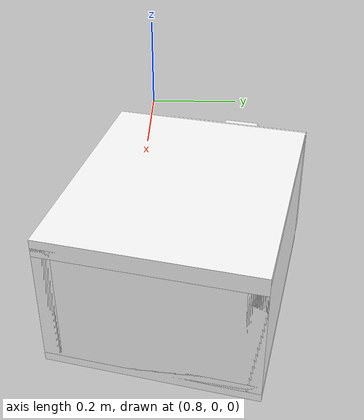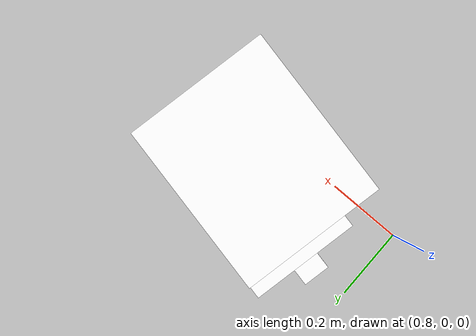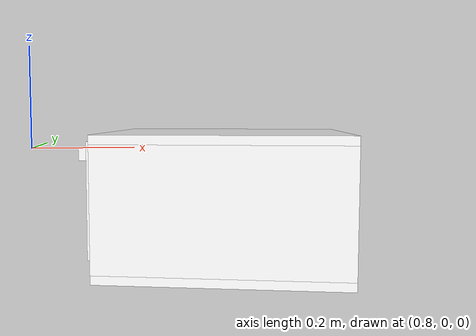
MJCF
<mujoco model="cabinet">
    <compiler angle="radian" eulerseq='zxy' />
    <option gravity = "0 0 0" />
    <option>
        <flag contact = "disable"/>
    </option>
    <statistic	extent="1.0" center="0.0 0.0 0.0"/>
    <visual>
        <map fogstart="3" fogend="5" force="0.1" znear=" 0.100000 " zfar=" 12.000000 "/>
    </visual>
    <size njmax="500" nconmax="100" />
    <actuator>
        <velocity joint="bottom_left_hinge" name="viva_revolution" kv='10'></velocity>
    </actuator>
    <asset>
        <texture builtin="flat" name="tabletex" height="32" width="32" rgb1="1 1 1" type="cube"></texture>
        <texture builtin="flat" name="objtex" height="32" width="32" rgb1="1 1 1" type="cube"></texture>
        <texture builtin="flat" name="handletex" height="32" width="32" rgb1="1 1 1" type="cube"></texture>
        <texture builtin="flat" name="wallpaper" height="32" width="32" rgb1="1 1 1" type="cube"></texture>
        <texture builtin="flat" name="kp" height="32" width="32" rgb1="1 1 1" type="cube"></texture>
        <material name="geomTable" shininess="0.03" specular="0.75" texture="tabletex"></material>
        <material name="geomObj" shininess="0.03" specular="0.75" texture="objtex"></material>
        <material name="geomHandle" shininess="0.03" specular="0.75" texture="handletex"></material>
        <material name="bg" shininess="0.03" specular="0.75" texture="wallpaper"></material>
        <material name="geomKeypad" shininess="0.03" specular="0.75" texture="kp"></material>
    </asset>
    <worldbody>
        <body name="cabinet_bottom" pos= " 1.204610 0.085297 -0.241808 "  quat= " 0.109134 0.000000 0.000000 0.994027" >
            <inertial pos="0 0 0" mass="1" diaginertia="1 1 1" />
            <geom size= " 0.251620 0.210553 0.018118 "  type="box" material="geomObj" name="b"/>
            <body name="cabinet_left" pos= " 0.000000 -0.192436 0.126091 " >
                <inertial pos="0 0 0" mass="1" diaginertia="1 1 1" />
                <geom size= " 0.251620 0.018118 0.126091 "  type="box" material="geomObj" name="c" />
            </body>
            <body name="cabinet_right" pos= " 0.000000 0.192436 0.126091 " >
                <inertial pos="0 0 0" mass="1" diaginertia="1 1 1" />
                <geom size= " 0.251620 0.018118 0.126091 "  type="box" material="geomObj" name="d" />
            </body>
            <body name="cabinet_top" pos= " 0.000000 0.000000 0.252181 " >
                <inertial pos="0 0 0" mass="1" diaginertia="1 1 1" />
                <geom size= " 0.251620 0.210553 0.018118 "  type="box" material="geomObj" name="e"/>
            </body>
            <body name="cabinet_back" pos= " -0.233502 0.000000 0.126091 "  >
                <inertial pos="0 0 0" mass="1" diaginertia="1 1 1" />
                <geom size= " 0.018118 0.210553 0.126091 "  type="box" material="geomObj" name="f" />
            </body>
            <body name="cabinet_keypad" pos= " 0.018118 0.154729 0.126091 " >
                <inertial pos="0 0 0" mass="1" diaginertia="1 1 1" />
                <geom size= " 0.233502 0.054825 0.107973 "  type="box" material="geomKeypad" name="keypizzlemynizzle" />
            </body>
            <body name="cabinet_left_hinge" pos= " 0.251620 -0.054825 0.000000 " >
                <inertial pos= " 0.020000 0.000000 0.126091 "  mass="1" diaginertia="1 1 1" />
                <joint name="bottom_left_hinge" type="hinge" pos="0 0 0" axis="0 1 0" limited="true" range= "0 2.3"  />
                <geom size= " 0.018118 0.155729 0.126091 "  pos= " 0.020000 0.000000 0.126091 "  type="box" material="geomObj" name="g"/>
                <body name="handle_link" pos= " 0.062905 0.000000 0.215946 " >
                    <inertial pos="0 0 0" mass="1" diaginertia="1 1 1" />
                    <geom size= " 0.029000 0.038252 0.014517 "  type="box" material="geomHandle" name="h"/>
                </body>
            </body>
        </body>
        <body name="external_camera_body_0" pos="0.0 0 0.00">
            <camera euler="-1.57 1.57 0.0" fovy=" 54.280851 " name="external_camera_0" pos="0.0 0 0"></camera>
            <inertial pos= " 0.00 0.0 0.000000 " mass="1" diaginertia="1 1 1" />
            <joint name="cam_j" pos="0.0 0 0" axis = "1 0 0" type="free" />
        </body>
    </worldbody>
</mujoco>
